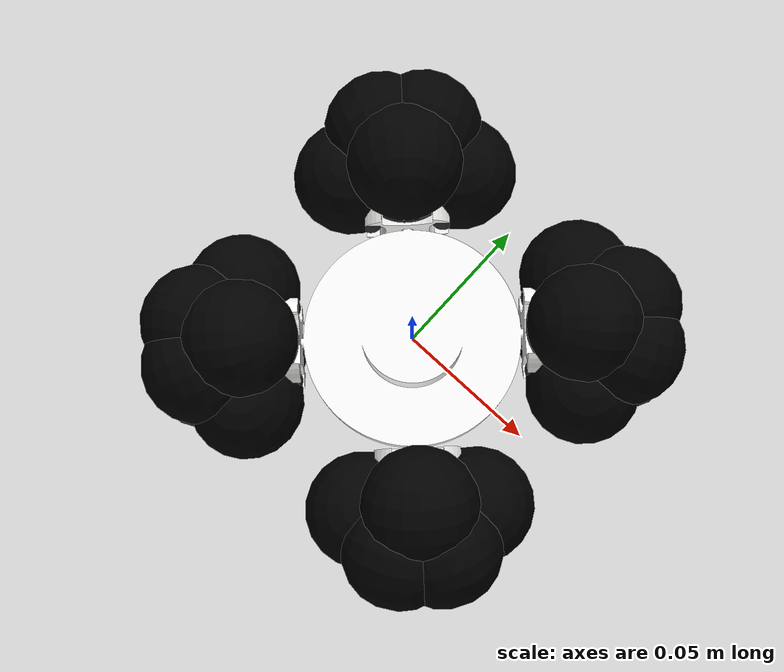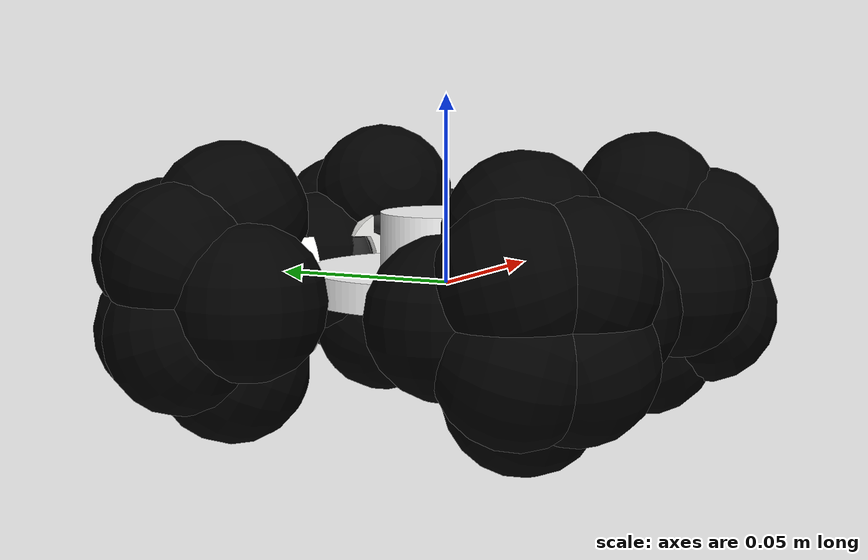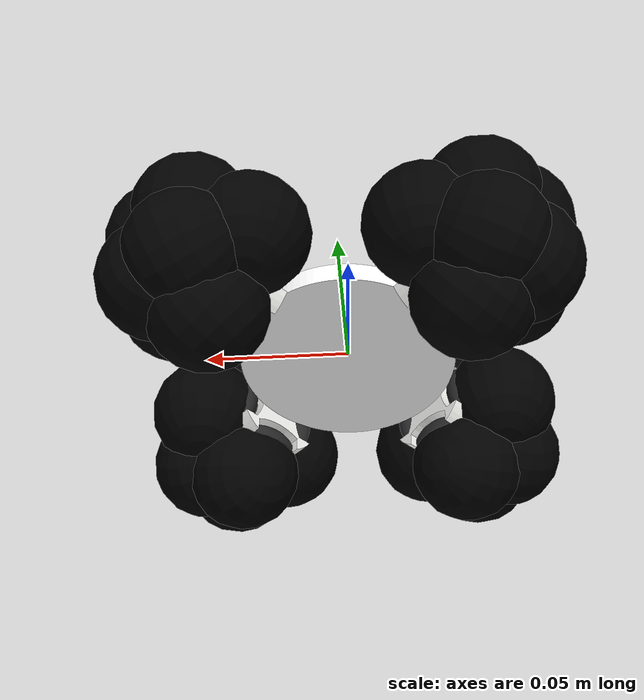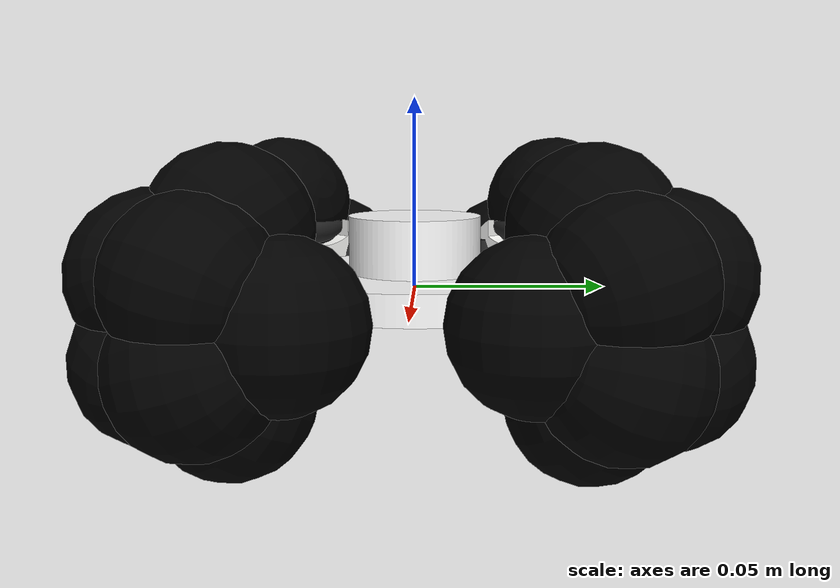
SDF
<sdf version='1.9'>
  <model name='omni_robot'>
    <link name='base_footprint'>
      <inertial>
        <pose>0 0 0 0 0 0</pose>
        <mass>0.050000000000000003</mass>
        <inertia>
          <ixx>2.026666666666666e-05</ixx>
          <ixy>0</ixy>
          <ixz>0</ixz>
          <iyy>2.026666666666666e-05</iyy>
          <iyz>0</iyz>
          <izz>4.0000000000000003e-05</izz>
        </inertia>
      </inertial>
      <collision name='base_footprint_fixed_joint_lump__base_link_collision'>
        <pose>0 0 0 0 0 0.7853981850000001</pose>
        <geometry>
          <mesh>
            <scale>0.001 0.001 0.001</scale>
            <uri>file:///home/armmy2530/Documents/ros2/ros2EIC/install/armmy_omnibot/share/armmy_omnibot/meshes/base_link.stl</uri>
          </mesh>
        </geometry>
        <surface>
          <contact>
            <ode/>
          </contact>
          <friction>
            <ode>
              <mu>0.050000000000000003</mu>
              <mu2>0.050000000000000003</mu2>
            </ode>
          </friction>
        </surface>
      </collision>
      <visual name='base_footprint_fixed_joint_lump__base_link_visual'>
        <pose>0 0 0 0 0 0.7853981850000001</pose>
        <geometry>
          <mesh>
            <scale>0.001 0.001 0.001</scale>
            <uri>file:///home/armmy2530/Documents/ros2/ros2EIC/install/armmy_omnibot/share/armmy_omnibot/meshes/base_link.stl</uri>
          </mesh>
        </geometry>
        <material>
          <diffuse>1 1 1 1</diffuse>
          <ambient>1 1 1 1</ambient>
        </material>
      </visual>
      <self_collide>false</self_collide>
      <sensor name='imu_sensor' type='imu'>
        <always_on>true</always_on>
        <update_rate>40</update_rate>
        <visualize>false</visualize>
        <topic>imu</topic>
        <pose>0 0 0.05 0 -0 0.785398</pose>
      </sensor>
      <sensor name='laser' type='gpu_lidar'>
        <visualize>false</visualize>
        <update_rate>40</update_rate>
        <lidar>
          <scan>
            <horizontal>
              <samples>360</samples>
              <resolution>1</resolution>
              <min_angle>-3.1400000000000001</min_angle>
              <max_angle>3.1400000000000001</max_angle>
            </horizontal>
          </scan>
          <range>
            <min>0.02</min>
            <max>10</max>
            <resolution>0.014999999999999999</resolution>
          </range>
          <noise>
            <type>gaussian</type>
            <mean>0</mean>
            <stddev>0.01</stddev>
          </noise>
        </lidar>
        <topic>scan</topic>
        <pose>0 0 0.05 0 -0 0.785398</pose>
        <gz_frame_id>top_lidar_link</gz_frame_id>
      </sensor>
    </link>
    <joint name='first_wheel_joint' type='revolute'>
      <pose relative_to='base_footprint'>-0.02713522331422381 0.0271352221418437 0 0 0 0.7853981850000001</pose>
      <parent>base_footprint</parent>
      <child>first_wheel_link</child>
      <axis>
        <xyz>0 1 0</xyz>
        <limit>
          <effort>100</effort>
          <velocity>100</velocity>
          <lower>-10000000000000000</lower>
          <upper>10000000000000000</upper>
        </limit>
        <dynamics>
          <spring_reference>0</spring_reference>
          <spring_stiffness>0</spring_stiffness>
        </dynamics>
      </axis>
    </joint>
    <link name='first_wheel_link'>
      <pose relative_to='first_wheel_joint'>0 0 0 0 0 0</pose>
      <inertial>
        <pose>0 0.00925 0 1.570796327 0 0</pose>
        <mass>0.050000000000000003</mass>
        <inertia>
          <ixx>5.254166666666667e-06</ixx>
          <ixy>0</ixy>
          <ixz>0</ixz>
          <iyy>5.254166666666667e-06</iyy>
          <iyz>0</iyz>
          <izz>7.6562500000000014e-06</izz>
        </inertia>
      </inertial>
      <visual name='first_wheel_link_visual'>
        <pose>0 0 0 0 0 0</pose>
        <geometry>
          <mesh>
            <scale>1 1 1</scale>
            <uri>model://armmy_omnibot/meshes/omni_wheel/wheel_assembly.dae</uri>
          </mesh>
        </geometry>
      </visual>
      <self_collide>false</self_collide>
    </link>
    <joint name='roller_first_1_joint' type='revolute'>
      <pose relative_to='first_wheel_link'>0.015 0.0046 0 0 0 1</pose>
      <parent>first_wheel_link</parent>
      <child>roller_first_1_link</child>
      <axis>
        <xyz>0 0 1</xyz>
        <limit>
          <lower>-10000000000000000</lower>
          <upper>10000000000000000</upper>
        </limit>
        <dynamics>
          <spring_reference>0</spring_reference>
          <spring_stiffness>0</spring_stiffness>
        </dynamics>
      </axis>
    </joint>
    <link name='roller_first_1_link'>
      <pose relative_to='roller_first_1_joint'>0 0 0 0 0 0</pose>
      <inertial>
        <pose>0 0.00925 0 1.570796327 0 0</pose>
        <mass>0.001</mass>
        <inertia>
          <ixx>1.6e-07</ixx>
          <ixy>0</ixy>
          <ixz>0</ixz>
          <iyy>1.6e-07</iyy>
          <iyz>0</iyz>
          <izz>1.6e-07</izz>
        </inertia>
      </inertial>
      <collision name='roller_first_1_link_collision'>
        <pose>0.015 0.0046 0 0 0 1</pose>
        <geometry>
          <sphere>
            <radius>0.02</radius>
          </sphere>
        </geometry>
      </collision>
      <visual name='roller_first_1_link_visual'>
        <pose>0.015 0.0046 0 0 0 1</pose>
        <geometry>
          <sphere>
            <radius>0.02</radius>
          </sphere>
        </geometry>
        <material>
          <diffuse>0 0 0 1</diffuse>
          <ambient>0 0 0 1</ambient>
        </material>
      </visual>
    </link>
    <joint name='roller_first_2_joint' type='revolute'>
      <pose relative_to='first_wheel_link'>0 0.0046 0.015 -1 0 0</pose>
      <parent>first_wheel_link</parent>
      <child>roller_first_2_link</child>
      <axis>
        <xyz>-1 0 0</xyz>
        <limit>
          <lower>-10000000000000000</lower>
          <upper>10000000000000000</upper>
        </limit>
        <dynamics>
          <spring_reference>0</spring_reference>
          <spring_stiffness>0</spring_stiffness>
        </dynamics>
      </axis>
    </joint>
    <link name='roller_first_2_link'>
      <pose relative_to='roller_first_2_joint'>0 0 0 0 0 0</pose>
      <inertial>
        <pose>0 0.00925 0 1.570796327 0 0</pose>
        <mass>0.001</mass>
        <inertia>
          <ixx>1.6e-07</ixx>
          <ixy>0</ixy>
          <ixz>0</ixz>
          <iyy>1.6e-07</iyy>
          <iyz>0</iyz>
          <izz>1.6e-07</izz>
        </inertia>
      </inertial>
      <collision name='roller_first_2_link_collision'>
        <pose>0 0.0046 0.015 -1 0 0</pose>
        <geometry>
          <sphere>
            <radius>0.02</radius>
          </sphere>
        </geometry>
      </collision>
      <visual name='roller_first_2_link_visual'>
        <pose>0 0.0046 0.015 -1 0 0</pose>
        <geometry>
          <sphere>
            <radius>0.02</radius>
          </sphere>
        </geometry>
        <material>
          <diffuse>0 0 0 1</diffuse>
          <ambient>0 0 0 1</ambient>
        </material>
      </visual>
    </link>
    <joint name='roller_first_3_joint' type='revolute'>
      <pose relative_to='first_wheel_link'>-0.015 0.0046 0 0 0 -1</pose>
      <parent>first_wheel_link</parent>
      <child>roller_first_3_link</child>
      <axis>
        <xyz>0 0 -1</xyz>
        <limit>
          <lower>-10000000000000000</lower>
          <upper>10000000000000000</upper>
        </limit>
        <dynamics>
          <spring_reference>0</spring_reference>
          <spring_stiffness>0</spring_stiffness>
        </dynamics>
      </axis>
    </joint>
    <link name='roller_first_3_link'>
      <pose relative_to='roller_first_3_joint'>0 0 0 0 0 0</pose>
      <inertial>
        <pose>0 0.00925 0 1.570796327 0 0</pose>
        <mass>0.001</mass>
        <inertia>
          <ixx>1.6e-07</ixx>
          <ixy>0</ixy>
          <ixz>0</ixz>
          <iyy>1.6e-07</iyy>
          <iyz>0</iyz>
          <izz>1.6e-07</izz>
        </inertia>
      </inertial>
      <collision name='roller_first_3_link_collision'>
        <pose>-0.015 0.0046 0 0 0 -1</pose>
        <geometry>
          <sphere>
            <radius>0.02</radius>
          </sphere>
        </geometry>
      </collision>
      <visual name='roller_first_3_link_visual'>
        <pose>-0.015 0.0046 0 0 0 -1</pose>
        <geometry>
          <sphere>
            <radius>0.02</radius>
          </sphere>
        </geometry>
        <material>
          <diffuse>0 0 0 1</diffuse>
          <ambient>0 0 0 1</ambient>
        </material>
      </visual>
    </link>
    <joint name='roller_first_4_joint' type='revolute'>
      <pose relative_to='first_wheel_link'>0 0.0046 -0.015 1 0 0</pose>
      <parent>first_wheel_link</parent>
      <child>roller_first_4_link</child>
      <axis>
        <xyz>1 0 0</xyz>
        <limit>
          <lower>-10000000000000000</lower>
          <upper>10000000000000000</upper>
        </limit>
        <dynamics>
          <spring_reference>0</spring_reference>
          <spring_stiffness>0</spring_stiffness>
        </dynamics>
      </axis>
    </joint>
    <link name='roller_first_4_link'>
      <pose relative_to='roller_first_4_joint'>0 0 0 0 0 0</pose>
      <inertial>
        <pose>0 0.00925 0 1.570796327 0 0</pose>
        <mass>0.001</mass>
        <inertia>
          <ixx>1.6e-07</ixx>
          <ixy>0</ixy>
          <ixz>0</ixz>
          <iyy>1.6e-07</iyy>
          <iyz>0</iyz>
          <izz>1.6e-07</izz>
        </inertia>
      </inertial>
      <collision name='roller_first_4_link_collision'>
        <pose>0 0.0046 -0.015 1 0 0</pose>
        <geometry>
          <sphere>
            <radius>0.02</radius>
          </sphere>
        </geometry>
      </collision>
      <visual name='roller_first_4_link_visual'>
        <pose>0 0.0046 -0.015 1 0 0</pose>
        <geometry>
          <sphere>
            <radius>0.02</radius>
          </sphere>
        </geometry>
        <material>
          <diffuse>0 0 0 1</diffuse>
          <ambient>0 0 0 1</ambient>
        </material>
      </visual>
    </link>
    <joint name='roller_first_5_joint' type='revolute'>
      <pose relative_to='first_wheel_link'>0.0106 0.0139 0.0106 -0.707107 0 0.707107</pose>
      <parent>first_wheel_link</parent>
      <child>roller_first_5_link</child>
      <axis>
        <xyz>-0.707107 0 0.707107</xyz>
        <limit>
          <lower>-10000000000000000</lower>
          <upper>10000000000000000</upper>
        </limit>
        <dynamics>
          <spring_reference>0</spring_reference>
          <spring_stiffness>0</spring_stiffness>
        </dynamics>
      </axis>
    </joint>
    <link name='roller_first_5_link'>
      <pose relative_to='roller_first_5_joint'>0 0 0 0 0 0</pose>
      <inertial>
        <pose>0 0.00925 0 1.570796327 0 0</pose>
        <mass>0.001</mass>
        <inertia>
          <ixx>1.6e-07</ixx>
          <ixy>0</ixy>
          <ixz>0</ixz>
          <iyy>1.6e-07</iyy>
          <iyz>0</iyz>
          <izz>1.6e-07</izz>
        </inertia>
      </inertial>
      <collision name='roller_first_5_link_collision'>
        <pose>0.0106 0.0139 0.0106 -0.707107 0 0.707107</pose>
        <geometry>
          <sphere>
            <radius>0.02</radius>
          </sphere>
        </geometry>
      </collision>
      <visual name='roller_first_5_link_visual'>
        <pose>0.0106 0.0139 0.0106 -0.707107 0 0.707107</pose>
        <geometry>
          <sphere>
            <radius>0.02</radius>
          </sphere>
        </geometry>
        <material>
          <diffuse>0 0 0 1</diffuse>
          <ambient>0 0 0 1</ambient>
        </material>
      </visual>
    </link>
    <joint name='roller_first_6_joint' type='revolute'>
      <pose relative_to='first_wheel_link'>-0.0106 0.0139 0.0106 -0.707107 0 -0.707107</pose>
      <parent>first_wheel_link</parent>
      <child>roller_first_6_link</child>
      <axis>
        <xyz>-0.707107 0 -0.707107</xyz>
        <limit>
          <lower>-10000000000000000</lower>
          <upper>10000000000000000</upper>
        </limit>
        <dynamics>
          <spring_reference>0</spring_reference>
          <spring_stiffness>0</spring_stiffness>
        </dynamics>
      </axis>
    </joint>
    <link name='roller_first_6_link'>
      <pose relative_to='roller_first_6_joint'>0 0 0 0 0 0</pose>
      <inertial>
        <pose>0 0.00925 0 1.570796327 0 0</pose>
        <mass>0.001</mass>
        <inertia>
          <ixx>1.6e-07</ixx>
          <ixy>0</ixy>
          <ixz>0</ixz>
          <iyy>1.6e-07</iyy>
          <iyz>0</iyz>
          <izz>1.6e-07</izz>
        </inertia>
      </inertial>
      <collision name='roller_first_6_link_collision'>
        <pose>-0.0106 0.0139 0.0106 -0.707107 0 -0.707107</pose>
        <geometry>
          <sphere>
            <radius>0.02</radius>
          </sphere>
        </geometry>
      </collision>
      <visual name='roller_first_6_link_visual'>
        <pose>-0.0106 0.0139 0.0106 -0.707107 0 -0.707107</pose>
        <geometry>
          <sphere>
            <radius>0.02</radius>
          </sphere>
        </geometry>
        <material>
          <diffuse>0 0 0 1</diffuse>
          <ambient>0 0 0 1</ambient>
        </material>
      </visual>
    </link>
    <joint name='roller_first_7_joint' type='revolute'>
      <pose relative_to='first_wheel_link'>-0.0106 0.0139 -0.0106 0.707107 0 -0.707107</pose>
      <parent>first_wheel_link</parent>
      <child>roller_first_7_link</child>
      <axis>
        <xyz>0.707107 0 -0.707107</xyz>
        <limit>
          <lower>-10000000000000000</lower>
          <upper>10000000000000000</upper>
        </limit>
        <dynamics>
          <spring_reference>0</spring_reference>
          <spring_stiffness>0</spring_stiffness>
        </dynamics>
      </axis>
    </joint>
    <link name='roller_first_7_link'>
      <pose relative_to='roller_first_7_joint'>0 0 0 0 0 0</pose>
      <inertial>
        <pose>0 0.00925 0 1.570796327 0 0</pose>
        <mass>0.001</mass>
        <inertia>
          <ixx>1.6e-07</ixx>
          <ixy>0</ixy>
          <ixz>0</ixz>
          <iyy>1.6e-07</iyy>
          <iyz>0</iyz>
          <izz>1.6e-07</izz>
        </inertia>
      </inertial>
      <collision name='roller_first_7_link_collision'>
        <pose>-0.0106 0.0139 -0.0106 0.707107 0 -0.707107</pose>
        <geometry>
          <sphere>
            <radius>0.02</radius>
          </sphere>
        </geometry>
      </collision>
      <visual name='roller_first_7_link_visual'>
        <pose>-0.0106 0.0139 -0.0106 0.707107 0 -0.707107</pose>
        <geometry>
          <sphere>
            <radius>0.02</radius>
          </sphere>
        </geometry>
        <material>
          <diffuse>0 0 0 1</diffuse>
          <ambient>0 0 0 1</ambient>
        </material>
      </visual>
    </link>
    <joint name='roller_first_8_joint' type='revolute'>
      <pose relative_to='first_wheel_link'>0.0106 0.0139 -0.0106 0.707107 0 0.707107</pose>
      <parent>first_wheel_link</parent>
      <child>roller_first_8_link</child>
      <axis>
        <xyz>0.707107 0 0.707107</xyz>
        <limit>
          <lower>-10000000000000000</lower>
          <upper>10000000000000000</upper>
        </limit>
        <dynamics>
          <spring_reference>0</spring_reference>
          <spring_stiffness>0</spring_stiffness>
        </dynamics>
      </axis>
    </joint>
    <link name='roller_first_8_link'>
      <pose relative_to='roller_first_8_joint'>0 0 0 0 0 0</pose>
      <inertial>
        <pose>0 0.00925 0 1.570796327 0 0</pose>
        <mass>0.001</mass>
        <inertia>
          <ixx>1.6e-07</ixx>
          <ixy>0</ixy>
          <ixz>0</ixz>
          <iyy>1.6e-07</iyy>
          <iyz>0</iyz>
          <izz>1.6e-07</izz>
        </inertia>
      </inertial>
      <collision name='roller_first_8_link_collision'>
        <pose>0.0106 0.0139 -0.0106 0.707107 0 0.707107</pose>
        <geometry>
          <sphere>
            <radius>0.02</radius>
          </sphere>
        </geometry>
      </collision>
      <visual name='roller_first_8_link_visual'>
        <pose>0.0106 0.0139 -0.0106 0.707107 0 0.707107</pose>
        <geometry>
          <sphere>
            <radius>0.02</radius>
          </sphere>
        </geometry>
        <material>
          <diffuse>0 0 0 1</diffuse>
          <ambient>0 0 0 1</ambient>
        </material>
      </visual>
    </link>
    <joint name='fourth_wheel_joint' type='revolute'>
      <pose relative_to='base_footprint'>0.0271352221418437 0.02713522331422381 0 0 0 -0.7853980121795862</pose>
      <parent>base_footprint</parent>
      <child>fourth_wheel_link</child>
      <axis>
        <xyz>0 1 0</xyz>
        <limit>
          <effort>100</effort>
          <velocity>100</velocity>
          <lower>-10000000000000000</lower>
          <upper>10000000000000000</upper>
        </limit>
        <dynamics>
          <spring_reference>0</spring_reference>
          <spring_stiffness>0</spring_stiffness>
        </dynamics>
      </axis>
    </joint>
    <link name='fourth_wheel_link'>
      <pose relative_to='fourth_wheel_joint'>0 0 0 0 0 0</pose>
      <inertial>
        <pose>0 0.00925 0 1.570796327 0 0</pose>
        <mass>0.050000000000000003</mass>
        <inertia>
          <ixx>5.254166666666667e-06</ixx>
          <ixy>0</ixy>
          <ixz>0</ixz>
          <iyy>5.254166666666667e-06</iyy>
          <iyz>0</iyz>
          <izz>7.6562500000000014e-06</izz>
        </inertia>
      </inertial>
      <visual name='fourth_wheel_link_visual'>
        <pose>0 0 0 0 0 0</pose>
        <geometry>
          <mesh>
            <scale>1 1 1</scale>
            <uri>model://armmy_omnibot/meshes/omni_wheel/wheel_assembly.dae</uri>
          </mesh>
        </geometry>
      </visual>
      <self_collide>false</self_collide>
    </link>
    <joint name='roller_fourth_1_joint' type='revolute'>
      <pose relative_to='fourth_wheel_link'>0.015 0.0046 0 0 0 1</pose>
      <parent>fourth_wheel_link</parent>
      <child>roller_fourth_1_link</child>
      <axis>
        <xyz>0 0 1</xyz>
        <limit>
          <lower>-10000000000000000</lower>
          <upper>10000000000000000</upper>
        </limit>
        <dynamics>
          <spring_reference>0</spring_reference>
          <spring_stiffness>0</spring_stiffness>
        </dynamics>
      </axis>
    </joint>
    <link name='roller_fourth_1_link'>
      <pose relative_to='roller_fourth_1_joint'>0 0 0 0 0 0</pose>
      <inertial>
        <pose>0 0.00925 0 1.570796327 0 0</pose>
        <mass>0.001</mass>
        <inertia>
          <ixx>1.6e-07</ixx>
          <ixy>0</ixy>
          <ixz>0</ixz>
          <iyy>1.6e-07</iyy>
          <iyz>0</iyz>
          <izz>1.6e-07</izz>
        </inertia>
      </inertial>
      <collision name='roller_fourth_1_link_collision'>
        <pose>0.015 0.0046 0 0 0 1</pose>
        <geometry>
          <sphere>
            <radius>0.02</radius>
          </sphere>
        </geometry>
      </collision>
      <visual name='roller_fourth_1_link_visual'>
        <pose>0.015 0.0046 0 0 0 1</pose>
        <geometry>
          <sphere>
            <radius>0.02</radius>
          </sphere>
        </geometry>
        <material>
          <diffuse>0 0 0 1</diffuse>
          <ambient>0 0 0 1</ambient>
        </material>
      </visual>
    </link>
    <joint name='roller_fourth_2_joint' type='revolute'>
      <pose relative_to='fourth_wheel_link'>0 0.0046 0.015 -1 0 0</pose>
      <parent>fourth_wheel_link</parent>
      <child>roller_fourth_2_link</child>
      <axis>
        <xyz>-1 0 0</xyz>
        <limit>
          <lower>-10000000000000000</lower>
          <upper>10000000000000000</upper>
        </limit>
        <dynamics>
          <spring_reference>0</spring_reference>
          <spring_stiffness>0</spring_stiffness>
        </dynamics>
      </axis>
    </joint>
    <link name='roller_fourth_2_link'>
      <pose relative_to='roller_fourth_2_joint'>0 0 0 0 0 0</pose>
      <inertial>
        <pose>0 0.00925 0 1.570796327 0 0</pose>
        <mass>0.001</mass>
        <inertia>
          <ixx>1.6e-07</ixx>
          <ixy>0</ixy>
          <ixz>0</ixz>
          <iyy>1.6e-07</iyy>
          <iyz>0</iyz>
          <izz>1.6e-07</izz>
        </inertia>
      </inertial>
      <collision name='roller_fourth_2_link_collision'>
        <pose>0 0.0046 0.015 -1 0 0</pose>
        <geometry>
          <sphere>
            <radius>0.02</radius>
          </sphere>
        </geometry>
      </collision>
      <visual name='roller_fourth_2_link_visual'>
        <pose>0 0.0046 0.015 -1 0 0</pose>
        <geometry>
          <sphere>
            <radius>0.02</radius>
          </sphere>
        </geometry>
        <material>
          <diffuse>0 0 0 1</diffuse>
          <ambient>0 0 0 1</ambient>
        </material>
      </visual>
    </link>
    <joint name='roller_fourth_3_joint' type='revolute'>
      <pose relative_to='fourth_wheel_link'>-0.015 0.0046 0 0 0 -1</pose>
      <parent>fourth_wheel_link</parent>
      <child>roller_fourth_3_link</child>
      <axis>
        <xyz>0 0 -1</xyz>
        <limit>
          <lower>-10000000000000000</lower>
          <upper>10000000000000000</upper>
        </limit>
        <dynamics>
          <spring_reference>0</spring_reference>
          <spring_stiffness>0</spring_stiffness>
        </dynamics>
      </axis>
    </joint>
    <link name='roller_fourth_3_link'>
      <pose relative_to='roller_fourth_3_joint'>0 0 0 0 0 0</pose>
      <inertial>
        <pose>0 0.00925 0 1.570796327 0 0</pose>
        <mass>0.001</mass>
        <inertia>
          <ixx>1.6e-07</ixx>
          <ixy>0</ixy>
          <ixz>0</ixz>
          <iyy>1.6e-07</iyy>
          <iyz>0</iyz>
          <izz>1.6e-07</izz>
        </inertia>
      </inertial>
      <collision name='roller_fourth_3_link_collision'>
        <pose>-0.015 0.0046 0 0 0 -1</pose>
        <geometry>
          <sphere>
            <radius>0.02</radius>
          </sphere>
        </geometry>
      </collision>
      <visual name='roller_fourth_3_link_visual'>
        <pose>-0.015 0.0046 0 0 0 -1</pose>
        <geometry>
          <sphere>
            <radius>0.02</radius>
          </sphere>
        </geometry>
        <material>
          <diffuse>0 0 0 1</diffuse>
          <ambient>0 0 0 1</ambient>
        </material>
      </visual>
    </link>
    <joint name='roller_fourth_4_joint' type='revolute'>
      <pose relative_to='fourth_wheel_link'>0 0.0046 -0.015 1 0 0</pose>
      <parent>fourth_wheel_link</parent>
      <child>roller_fourth_4_link</child>
      <axis>
        <xyz>1 0 0</xyz>
        <limit>
          <lower>-10000000000000000</lower>
          <upper>10000000000000000</upper>
        </limit>
        <dynamics>
          <spring_reference>0</spring_reference>
          <spring_stiffness>0</spring_stiffness>
        </dynamics>
      </axis>
    </joint>
    <link name='roller_fourth_4_link'>
      <pose relative_to='roller_fourth_4_joint'>0 0 0 0 0 0</pose>
      <inertial>
        <pose>0 0.00925 0 1.570796327 0 0</pose>
        <mass>0.001</mass>
        <inertia>
          <ixx>1.6e-07</ixx>
          <ixy>0</ixy>
          <ixz>0</ixz>
          <iyy>1.6e-07</iyy>
          <iyz>0</iyz>
          <izz>1.6e-07</izz>
        </inertia>
      </inertial>
      <collision name='roller_fourth_4_link_collision'>
        <pose>0 0.0046 -0.015 1 0 0</pose>
        <geometry>
          <sphere>
            <radius>0.02</radius>
          </sphere>
        </geometry>
      </collision>
      <visual name='roller_fourth_4_link_visual'>
        <pose>0 0.0046 -0.015 1 0 0</pose>
        <geometry>
          <sphere>
            <radius>0.02</radius>
          </sphere>
        </geometry>
        <material>
          <diffuse>0 0 0 1</diffuse>
          <ambient>0 0 0 1</ambient>
        </material>
      </visual>
    </link>
    <joint name='roller_fourth_5_joint' type='revolute'>
      <pose relative_to='fourth_wheel_link'>0.0106 0.0139 0.0106 -0.707107 0 0.707107</pose>
      <parent>fourth_wheel_link</parent>
      <child>roller_fourth_5_link</child>
      <axis>
        <xyz>-0.707107 0 0.707107</xyz>
        <limit>
          <lower>-10000000000000000</lower>
          <upper>10000000000000000</upper>
        </limit>
        <dynamics>
          <spring_reference>0</spring_reference>
          <spring_stiffness>0</spring_stiffness>
        </dynamics>
      </axis>
    </joint>
    <link name='roller_fourth_5_link'>
      <pose relative_to='roller_fourth_5_joint'>0 0 0 0 0 0</pose>
      <inertial>
        <pose>0 0.00925 0 1.570796327 0 0</pose>
        <mass>0.001</mass>
        <inertia>
          <ixx>1.6e-07</ixx>
          <ixy>0</ixy>
          <ixz>0</ixz>
          <iyy>1.6e-07</iyy>
          <iyz>0</iyz>
          <izz>1.6e-07</izz>
        </inertia>
      </inertial>
      <collision name='roller_fourth_5_link_collision'>
        <pose>0.0106 0.0139 0.0106 -0.707107 0 0.707107</pose>
        <geometry>
          <sphere>
            <radius>0.02</radius>
          </sphere>
        </geometry>
      </collision>
      <visual name='roller_fourth_5_link_visual'>
        <pose>0.0106 0.0139 0.0106 -0.707107 0 0.707107</pose>
        <geometry>
          <sphere>
            <radius>0.02</radius>
          </sphere>
        </geometry>
        <material>
          <diffuse>0 0 0 1</diffuse>
          <ambient>0 0 0 1</ambient>
        </material>
      </visual>
    </link>
    <joint name='roller_fourth_6_joint' type='revolute'>
      <pose relative_to='fourth_wheel_link'>-0.0106 0.0139 0.0106 -0.707107 0 -0.707107</pose>
      <parent>fourth_wheel_link</parent>
      <child>roller_fourth_6_link</child>
      <axis>
        <xyz>-0.707107 0 -0.707107</xyz>
        <limit>
          <lower>-10000000000000000</lower>
          <upper>10000000000000000</upper>
        </limit>
        <dynamics>
          <spring_reference>0</spring_reference>
          <spring_stiffness>0</spring_stiffness>
        </dynamics>
      </axis>
    </joint>
    <link name='roller_fourth_6_link'>
      <pose relative_to='roller_fourth_6_joint'>0 0 0 0 0 0</pose>
      <inertial>
        <pose>0 0.00925 0 1.570796327 0 0</pose>
        <mass>0.001</mass>
        <inertia>
          <ixx>1.6e-07</ixx>
          <ixy>0</ixy>
          <ixz>0</ixz>
          <iyy>1.6e-07</iyy>
          <iyz>0</iyz>
          <izz>1.6e-07</izz>
        </inertia>
      </inertial>
      <collision name='roller_fourth_6_link_collision'>
        <pose>-0.0106 0.0139 0.0106 -0.707107 0 -0.707107</pose>
        <geometry>
          <sphere>
            <radius>0.02</radius>
          </sphere>
        </geometry>
      </collision>
      <visual name='roller_fourth_6_link_visual'>
        <pose>-0.0106 0.0139 0.0106 -0.707107 0 -0.707107</pose>
        <geometry>
          <sphere>
            <radius>0.02</radius>
          </sphere>
        </geometry>
        <material>
          <diffuse>0 0 0 1</diffuse>
          <ambient>0 0 0 1</ambient>
        </material>
      </visual>
    </link>
    <joint name='roller_fourth_7_joint' type='revolute'>
      <pose relative_to='fourth_wheel_link'>-0.0106 0.0139 -0.0106 0.707107 0 -0.707107</pose>
      <parent>fourth_wheel_link</parent>
      <child>roller_fourth_7_link</child>
      <axis>
        <xyz>0.707107 0 -0.707107</xyz>
        <limit>
          <lower>-10000000000000000</lower>
          <upper>10000000000000000</upper>
        </limit>
        <dynamics>
          <spring_reference>0</spring_reference>
          <spring_stiffness>0</spring_stiffness>
        </dynamics>
      </axis>
    </joint>
    <link name='roller_fourth_7_link'>
      <pose relative_to='roller_fourth_7_joint'>0 0 0 0 0 0</pose>
      <inertial>
        <pose>0 0.00925 0 1.570796327 0 0</pose>
        <mass>0.001</mass>
        <inertia>
          <ixx>1.6e-07</ixx>
          <ixy>0</ixy>
          <ixz>0</ixz>
          <iyy>1.6e-07</iyy>
          <iyz>0</iyz>
          <izz>1.6e-07</izz>
        </inertia>
      </inertial>
      <collision name='roller_fourth_7_link_collision'>
        <pose>-0.0106 0.0139 -0.0106 0.707107 0 -0.707107</pose>
        <geometry>
          <sphere>
            <radius>0.02</radius>
          </sphere>
        </geometry>
      </collision>
      <visual name='roller_fourth_7_link_visual'>
        <pose>-0.0106 0.0139 -0.0106 0.707107 0 -0.707107</pose>
        <geometry>
          <sphere>
            <radius>0.02</radius>
          </sphere>
        </geometry>
        <material>
          <diffuse>0 0 0 1</diffuse>
          <ambient>0 0 0 1</ambient>
        </material>
      </visual>
    </link>
    <joint name='roller_fourth_8_joint' type='revolute'>
      <pose relative_to='fourth_wheel_link'>0.0106 0.0139 -0.0106 0.707107 0 0.707107</pose>
      <parent>fourth_wheel_link</parent>
      <child>roller_fourth_8_link</child>
      <axis>
        <xyz>0.707107 0 0.707107</xyz>
        <limit>
          <lower>-10000000000000000</lower>
          <upper>10000000000000000</upper>
        </limit>
        <dynamics>
          <spring_reference>0</spring_reference>
          <spring_stiffness>0</spring_stiffness>
        </dynamics>
      </axis>
    </joint>
    <link name='roller_fourth_8_link'>
      <pose relative_to='roller_fourth_8_joint'>0 0 0 0 0 0</pose>
      <inertial>
        <pose>0 0.00925 0 1.570796327 0 0</pose>
        <mass>0.001</mass>
        <inertia>
          <ixx>1.6e-07</ixx>
          <ixy>0</ixy>
          <ixz>0</ixz>
          <iyy>1.6e-07</iyy>
          <iyz>0</iyz>
          <izz>1.6e-07</izz>
        </inertia>
      </inertial>
      <collision name='roller_fourth_8_link_collision'>
        <pose>0.0106 0.0139 -0.0106 0.707107 0 0.707107</pose>
        <geometry>
          <sphere>
            <radius>0.02</radius>
          </sphere>
        </geometry>
      </collision>
      <visual name='roller_fourth_8_link_visual'>
        <pose>0.0106 0.0139 -0.0106 0.707107 0 0.707107</pose>
        <geometry>
          <sphere>
            <radius>0.02</radius>
          </sphere>
        </geometry>
        <material>
          <diffuse>0 0 0 1</diffuse>
          <ambient>0 0 0 1</ambient>
        </material>
      </visual>
    </link>
    <joint name='second_wheel_joint' type='revolute'>
      <pose relative_to='base_footprint'>-0.0271352221418437 -0.02713522331422381 0 0 0 2.356194555</pose>
      <parent>base_footprint</parent>
      <child>second_wheel_link</child>
      <axis>
        <xyz>0 1 0</xyz>
        <limit>
          <effort>100</effort>
          <velocity>100</velocity>
          <lower>-10000000000000000</lower>
          <upper>10000000000000000</upper>
        </limit>
        <dynamics>
          <spring_reference>0</spring_reference>
          <spring_stiffness>0</spring_stiffness>
        </dynamics>
      </axis>
    </joint>
    <link name='second_wheel_link'>
      <pose relative_to='second_wheel_joint'>0 0 0 0 0 0</pose>
      <inertial>
        <pose>0 0.00925 0 1.570796327 0 0</pose>
        <mass>0.050000000000000003</mass>
        <inertia>
          <ixx>5.254166666666667e-06</ixx>
          <ixy>0</ixy>
          <ixz>0</ixz>
          <iyy>5.254166666666667e-06</iyy>
          <iyz>0</iyz>
          <izz>7.6562500000000014e-06</izz>
        </inertia>
      </inertial>
      <visual name='second_wheel_link_visual'>
        <pose>0 0 0 0 0 0</pose>
        <geometry>
          <mesh>
            <scale>1 1 1</scale>
            <uri>model://armmy_omnibot/meshes/omni_wheel/wheel_assembly.dae</uri>
          </mesh>
        </geometry>
      </visual>
      <self_collide>false</self_collide>
    </link>
    <joint name='roller_second_1_joint' type='revolute'>
      <pose relative_to='second_wheel_link'>0.015 0.0046 0 0 0 1</pose>
      <parent>second_wheel_link</parent>
      <child>roller_second_1_link</child>
      <axis>
        <xyz>0 0 1</xyz>
        <limit>
          <lower>-10000000000000000</lower>
          <upper>10000000000000000</upper>
        </limit>
        <dynamics>
          <spring_reference>0</spring_reference>
          <spring_stiffness>0</spring_stiffness>
        </dynamics>
      </axis>
    </joint>
    <link name='roller_second_1_link'>
      <pose relative_to='roller_second_1_joint'>0 0 0 0 0 0</pose>
      <inertial>
        <pose>0 0.00925 0 1.570796327 0 0</pose>
        <mass>0.001</mass>
        <inertia>
          <ixx>1.6e-07</ixx>
          <ixy>0</ixy>
          <ixz>0</ixz>
          <iyy>1.6e-07</iyy>
          <iyz>0</iyz>
          <izz>1.6e-07</izz>
        </inertia>
      </inertial>
      <collision name='roller_second_1_link_collision'>
        <pose>0.015 0.0046 0 0 0 1</pose>
        <geometry>
          <sphere>
            <radius>0.02</radius>
          </sphere>
        </geometry>
      </collision>
      <visual name='roller_second_1_link_visual'>
        <pose>0.015 0.0046 0 0 0 1</pose>
        <geometry>
          <sphere>
            <radius>0.02</radius>
          </sphere>
        </geometry>
        <material>
          <diffuse>0 0 0 1</diffuse>
          <ambient>0 0 0 1</ambient>
        </material>
      </visual>
    </link>
    <joint name='roller_second_2_joint' type='revolute'>
      <pose relative_to='second_wheel_link'>0 0.0046 0.015 -1 0 0</pose>
      <parent>second_wheel_link</parent>
      <child>roller_second_2_link</child>
      <axis>
        <xyz>-1 0 0</xyz>
        <limit>
          <lower>-10000000000000000</lower>
          <upper>10000000000000000</upper>
        </limit>
        <dynamics>
          <spring_reference>0</spring_reference>
          <spring_stiffness>0</spring_stiffness>
        </dynamics>
      </axis>
    </joint>
    <link name='roller_second_2_link'>
      <pose relative_to='roller_second_2_joint'>0 0 0 0 0 0</pose>
      <inertial>
        <pose>0 0.00925 0 1.570796327 0 0</pose>
        <mass>0.001</mass>
        <inertia>
          <ixx>1.6e-07</ixx>
          <ixy>0</ixy>
          <ixz>0</ixz>
          <iyy>1.6e-07</iyy>
          <iyz>0</iyz>
          <izz>1.6e-07</izz>
        </inertia>
      </inertial>
      <collision name='roller_second_2_link_collision'>
        <pose>0 0.0046 0.015 -1 0 0</pose>
        <geometry>
          <sphere>
            <radius>0.02</radius>
          </sphere>
        </geometry>
      </collision>
      <visual name='roller_second_2_link_visual'>
        <pose>0 0.0046 0.015 -1 0 0</pose>
        <geometry>
          <sphere>
            <radius>0.02</radius>
          </sphere>
        </geometry>
        <material>
          <diffuse>0 0 0 1</diffuse>
          <ambient>0 0 0 1</ambient>
        </material>
      </visual>
    </link>
    <joint name='roller_second_3_joint' type='revolute'>
      <pose relative_to='second_wheel_link'>-0.015 0.0046 0 0 0 -1</pose>
      <parent>second_wheel_link</parent>
      <child>roller_second_3_link</child>
      <axis>
        <xyz>0 0 -1</xyz>
        <limit>
          <lower>-10000000000000000</lower>
          <upper>10000000000000000</upper>
        </limit>
        <dynamics>
          <spring_reference>0</spring_reference>
          <spring_stiffness>0</spring_stiffness>
        </dynamics>
      </axis>
    </joint>
    <link name='roller_second_3_link'>
      <pose relative_to='roller_second_3_joint'>0 0 0 0 0 0</pose>
      <inertial>
        <pose>0 0.00925 0 1.570796327 0 0</pose>
        <mass>0.001</mass>
        <inertia>
          <ixx>1.6e-07</ixx>
          <ixy>0</ixy>
          <ixz>0</ixz>
          <iyy>1.6e-07</iyy>
          <iyz>0</iyz>
          <izz>1.6e-07</izz>
        </inertia>
      </inertial>
      <collision name='roller_second_3_link_collision'>
        <pose>-0.015 0.0046 0 0 0 -1</pose>
        <geometry>
          <sphere>
            <radius>0.02</radius>
          </sphere>
        </geometry>
      </collision>
      <visual name='roller_second_3_link_visual'>
        <pose>-0.015 0.0046 0 0 0 -1</pose>
        <geometry>
          <sphere>
            <radius>0.02</radius>
          </sphere>
        </geometry>
        <material>
          <diffuse>0 0 0 1</diffuse>
          <ambient>0 0 0 1</ambient>
        </material>
      </visual>
    </link>
    <joint name='roller_second_4_joint' type='revolute'>
      <pose relative_to='second_wheel_link'>0 0.0046 -0.015 1 0 0</pose>
      <parent>second_wheel_link</parent>
      <child>roller_second_4_link</child>
      <axis>
        <xyz>1 0 0</xyz>
        <limit>
          <lower>-10000000000000000</lower>
          <upper>10000000000000000</upper>
        </limit>
        <dynamics>
          <spring_reference>0</spring_reference>
          <spring_stiffness>0</spring_stiffness>
        </dynamics>
      </axis>
    </joint>
    <link name='roller_second_4_link'>
      <pose relative_to='roller_second_4_joint'>0 0 0 0 0 0</pose>
      <inertial>
        <pose>0 0.00925 0 1.570796327 0 0</pose>
        <mass>0.001</mass>
        <inertia>
          <ixx>1.6e-07</ixx>
          <ixy>0</ixy>
          <ixz>0</ixz>
          <iyy>1.6e-07</iyy>
          <iyz>0</iyz>
          <izz>1.6e-07</izz>
        </inertia>
      </inertial>
      <collision name='roller_second_4_link_collision'>
        <pose>0 0.0046 -0.015 1 0 0</pose>
        <geometry>
          <sphere>
            <radius>0.02</radius>
          </sphere>
        </geometry>
      </collision>
      <visual name='roller_second_4_link_visual'>
        <pose>0 0.0046 -0.015 1 0 0</pose>
        <geometry>
          <sphere>
            <radius>0.02</radius>
          </sphere>
        </geometry>
        <material>
          <diffuse>0 0 0 1</diffuse>
          <ambient>0 0 0 1</ambient>
        </material>
      </visual>
    </link>
    <joint name='roller_second_5_joint' type='revolute'>
      <pose relative_to='second_wheel_link'>0.0106 0.0139 0.0106 -0.707107 0 0.707107</pose>
      <parent>second_wheel_link</parent>
      <child>roller_second_5_link</child>
      <axis>
        <xyz>-0.707107 0 0.707107</xyz>
        <limit>
          <lower>-10000000000000000</lower>
          <upper>10000000000000000</upper>
        </limit>
        <dynamics>
          <spring_reference>0</spring_reference>
          <spring_stiffness>0</spring_stiffness>
        </dynamics>
      </axis>
    </joint>
    <link name='roller_second_5_link'>
      <pose relative_to='roller_second_5_joint'>0 0 0 0 0 0</pose>
      <inertial>
        <pose>0 0.00925 0 1.570796327 0 0</pose>
        <mass>0.001</mass>
        <inertia>
          <ixx>1.6e-07</ixx>
          <ixy>0</ixy>
          <ixz>0</ixz>
          <iyy>1.6e-07</iyy>
          <iyz>0</iyz>
          <izz>1.6e-07</izz>
        </inertia>
      </inertial>
      <collision name='roller_second_5_link_collision'>
        <pose>0.0106 0.0139 0.0106 -0.707107 0 0.707107</pose>
        <geometry>
          <sphere>
            <radius>0.02</radius>
          </sphere>
        </geometry>
      </collision>
      <visual name='roller_second_5_link_visual'>
        <pose>0.0106 0.0139 0.0106 -0.707107 0 0.707107</pose>
        <geometry>
          <sphere>
            <radius>0.02</radius>
          </sphere>
        </geometry>
        <material>
          <diffuse>0 0 0 1</diffuse>
          <ambient>0 0 0 1</ambient>
        </material>
      </visual>
    </link>
    <joint name='roller_second_6_joint' type='revolute'>
      <pose relative_to='second_wheel_link'>-0.0106 0.0139 0.0106 -0.707107 0 -0.707107</pose>
      <parent>second_wheel_link</parent>
      <child>roller_second_6_link</child>
      <axis>
        <xyz>-0.707107 0 -0.707107</xyz>
        <limit>
          <lower>-10000000000000000</lower>
          <upper>10000000000000000</upper>
        </limit>
        <dynamics>
          <spring_reference>0</spring_reference>
          <spring_stiffness>0</spring_stiffness>
        </dynamics>
      </axis>
    </joint>
    <link name='roller_second_6_link'>
      <pose relative_to='roller_second_6_joint'>0 0 0 0 0 0</pose>
      <inertial>
        <pose>0 0.00925 0 1.570796327 0 0</pose>
        <mass>0.001</mass>
        <inertia>
          <ixx>1.6e-07</ixx>
          <ixy>0</ixy>
          <ixz>0</ixz>
          <iyy>1.6e-07</iyy>
          <iyz>0</iyz>
          <izz>1.6e-07</izz>
        </inertia>
      </inertial>
      <collision name='roller_second_6_link_collision'>
        <pose>-0.0106 0.0139 0.0106 -0.707107 0 -0.707107</pose>
        <geometry>
          <sphere>
            <radius>0.02</radius>
          </sphere>
        </geometry>
      </collision>
      <visual name='roller_second_6_link_visual'>
        <pose>-0.0106 0.0139 0.0106 -0.707107 0 -0.707107</pose>
        <geometry>
          <sphere>
            <radius>0.02</radius>
          </sphere>
        </geometry>
        <material>
          <diffuse>0 0 0 1</diffuse>
          <ambient>0 0 0 1</ambient>
        </material>
      </visual>
    </link>
    <joint name='roller_second_7_joint' type='revolute'>
      <pose relative_to='second_wheel_link'>-0.0106 0.0139 -0.0106 0.707107 0 -0.707107</pose>
      <parent>second_wheel_link</parent>
      <child>roller_second_7_link</child>
      <axis>
        <xyz>0.707107 0 -0.707107</xyz>
        <limit>
          <lower>-10000000000000000</lower>
          <upper>10000000000000000</upper>
        </limit>
        <dynamics>
          <spring_reference>0</spring_reference>
          <spring_stiffness>0</spring_stiffness>
        </dynamics>
      </axis>
    </joint>
    <link name='roller_second_7_link'>
      <pose relative_to='roller_second_7_joint'>0 0 0 0 0 0</pose>
      <inertial>
        <pose>0 0.00925 0 1.570796327 0 0</pose>
        <mass>0.001</mass>
        <inertia>
          <ixx>1.6e-07</ixx>
          <ixy>0</ixy>
          <ixz>0</ixz>
          <iyy>1.6e-07</iyy>
          <iyz>0</iyz>
          <izz>1.6e-07</izz>
        </inertia>
      </inertial>
      <collision name='roller_second_7_link_collision'>
        <pose>-0.0106 0.0139 -0.0106 0.707107 0 -0.707107</pose>
        <geometry>
          <sphere>
            <radius>0.02</radius>
          </sphere>
        </geometry>
      </collision>
      <visual name='roller_second_7_link_visual'>
        <pose>-0.0106 0.0139 -0.0106 0.707107 0 -0.707107</pose>
        <geometry>
          <sphere>
            <radius>0.02</radius>
          </sphere>
        </geometry>
        <material>
          <diffuse>0 0 0 1</diffuse>
          <ambient>0 0 0 1</ambient>
        </material>
      </visual>
    </link>
    <joint name='roller_second_8_joint' type='revolute'>
      <pose relative_to='second_wheel_link'>0.0106 0.0139 -0.0106 0.707107 0 0.707107</pose>
      <parent>second_wheel_link</parent>
      <child>roller_second_8_link</child>
      <axis>
        <xyz>0.707107 0 0.707107</xyz>
        <limit>
          <lower>-10000000000000000</lower>
          <upper>10000000000000000</upper>
        </limit>
        <dynamics>
          <spring_reference>0</spring_reference>
          <spring_stiffness>0</spring_stiffness>
        </dynamics>
      </axis>
    </joint>
    <link name='roller_second_8_link'>
      <pose relative_to='roller_second_8_joint'>0 0 0 0 0 0</pose>
      <inertial>
        <pose>0 0.00925 0 1.570796327 0 0</pose>
        <mass>0.001</mass>
        <inertia>
          <ixx>1.6e-07</ixx>
          <ixy>0</ixy>
          <ixz>0</ixz>
          <iyy>1.6e-07</iyy>
          <iyz>0</iyz>
          <izz>1.6e-07</izz>
        </inertia>
      </inertial>
      <collision name='roller_second_8_link_collision'>
        <pose>0.0106 0.0139 -0.0106 0.707107 0 0.707107</pose>
        <geometry>
          <sphere>
            <radius>0.02</radius>
          </sphere>
        </geometry>
      </collision>
      <visual name='roller_second_8_link_visual'>
        <pose>0.0106 0.0139 -0.0106 0.707107 0 0.707107</pose>
        <geometry>
          <sphere>
            <radius>0.02</radius>
          </sphere>
        </geometry>
        <material>
          <diffuse>0 0 0 1</diffuse>
          <ambient>0 0 0 1</ambient>
        </material>
      </visual>
    </link>
    <joint name='third_wheel_joint' type='revolute'>
      <pose relative_to='base_footprint'>0.02713522331422381 -0.0271352221418437 0 0 0 -2.356194382179586</pose>
      <parent>base_footprint</parent>
      <child>third_wheel_link</child>
      <axis>
        <xyz>0 1 0</xyz>
        <limit>
          <effort>100</effort>
          <velocity>100</velocity>
          <lower>-10000000000000000</lower>
          <upper>10000000000000000</upper>
        </limit>
        <dynamics>
          <spring_reference>0</spring_reference>
          <spring_stiffness>0</spring_stiffness>
        </dynamics>
      </axis>
    </joint>
    <link name='third_wheel_link'>
      <pose relative_to='third_wheel_joint'>0 0 0 0 0 0</pose>
      <inertial>
        <pose>0 0.00925 0 1.570796327 0 0</pose>
        <mass>0.050000000000000003</mass>
        <inertia>
          <ixx>5.254166666666667e-06</ixx>
          <ixy>0</ixy>
          <ixz>0</ixz>
          <iyy>5.254166666666667e-06</iyy>
          <iyz>0</iyz>
          <izz>7.6562500000000014e-06</izz>
        </inertia>
      </inertial>
      <visual name='third_wheel_link_visual'>
        <pose>0 0 0 0 0 0</pose>
        <geometry>
          <mesh>
            <scale>1 1 1</scale>
            <uri>model://armmy_omnibot/meshes/omni_wheel/wheel_assembly.dae</uri>
          </mesh>
        </geometry>
      </visual>
      <self_collide>false</self_collide>
    </link>
    <joint name='roller_third_1_joint' type='revolute'>
      <pose relative_to='third_wheel_link'>0.015 0.0046 0 0 0 1</pose>
      <parent>third_wheel_link</parent>
      <child>roller_third_1_link</child>
      <axis>
        <xyz>0 0 1</xyz>
        <limit>
          <lower>-10000000000000000</lower>
          <upper>10000000000000000</upper>
        </limit>
        <dynamics>
          <spring_reference>0</spring_reference>
          <spring_stiffness>0</spring_stiffness>
        </dynamics>
      </axis>
    </joint>
    <link name='roller_third_1_link'>
      <pose relative_to='roller_third_1_joint'>0 0 0 0 0 0</pose>
      <inertial>
        <pose>0 0.00925 0 1.570796327 0 0</pose>
        <mass>0.001</mass>
        <inertia>
          <ixx>1.6e-07</ixx>
          <ixy>0</ixy>
          <ixz>0</ixz>
          <iyy>1.6e-07</iyy>
          <iyz>0</iyz>
          <izz>1.6e-07</izz>
        </inertia>
      </inertial>
      <collision name='roller_third_1_link_collision'>
        <pose>0.015 0.0046 0 0 0 1</pose>
        <geometry>
          <sphere>
            <radius>0.02</radius>
          </sphere>
        </geometry>
      </collision>
      <visual name='roller_third_1_link_visual'>
        <pose>0.015 0.0046 0 0 0 1</pose>
        <geometry>
          <sphere>
            <radius>0.02</radius>
          </sphere>
        </geometry>
        <material>
          <diffuse>0 0 0 1</diffuse>
          <ambient>0 0 0 1</ambient>
        </material>
      </visual>
    </link>
    <joint name='roller_third_2_joint' type='revolute'>
      <pose relative_to='third_wheel_link'>0 0.0046 0.015 -1 0 0</pose>
      <parent>third_wheel_link</parent>
      <child>roller_third_2_link</child>
      <axis>
        <xyz>-1 0 0</xyz>
        <limit>
          <lower>-10000000000000000</lower>
          <upper>10000000000000000</upper>
        </limit>
        <dynamics>
          <spring_reference>0</spring_reference>
          <spring_stiffness>0</spring_stiffness>
        </dynamics>
      </axis>
    </joint>
    <link name='roller_third_2_link'>
      <pose relative_to='roller_third_2_joint'>0 0 0 0 0 0</pose>
      <inertial>
        <pose>0 0.00925 0 1.570796327 0 0</pose>
        <mass>0.001</mass>
        <inertia>
          <ixx>1.6e-07</ixx>
          <ixy>0</ixy>
          <ixz>0</ixz>
          <iyy>1.6e-07</iyy>
          <iyz>0</iyz>
          <izz>1.6e-07</izz>
        </inertia>
      </inertial>
      <collision name='roller_third_2_link_collision'>
        <pose>0 0.0046 0.015 -1 0 0</pose>
        <geometry>
          <sphere>
            <radius>0.02</radius>
          </sphere>
        </geometry>
      </collision>
      <visual name='roller_third_2_link_visual'>
        <pose>0 0.0046 0.015 -1 0 0</pose>
        <geometry>
          <sphere>
            <radius>0.02</radius>
          </sphere>
        </geometry>
        <material>
          <diffuse>0 0 0 1</diffuse>
          <ambient>0 0 0 1</ambient>
        </material>
      </visual>
    </link>
    <joint name='roller_third_3_joint' type='revolute'>
      <pose relative_to='third_wheel_link'>-0.015 0.0046 0 0 0 -1</pose>
      <parent>third_wheel_link</parent>
      <child>roller_third_3_link</child>
      <axis>
        <xyz>0 0 -1</xyz>
        <limit>
          <lower>-10000000000000000</lower>
          <upper>10000000000000000</upper>
        </limit>
        <dynamics>
          <spring_reference>0</spring_reference>
          <spring_stiffness>0</spring_stiffness>
        </dynamics>
      </axis>
    </joint>
    <link name='roller_third_3_link'>
      <pose relative_to='roller_third_3_joint'>0 0 0 0 0 0</pose>
      <inertial>
        <pose>0 0.00925 0 1.570796327 0 0</pose>
        <mass>0.001</mass>
        <inertia>
          <ixx>1.6e-07</ixx>
          <ixy>0</ixy>
          <ixz>0</ixz>
          <iyy>1.6e-07</iyy>
          <iyz>0</iyz>
          <izz>1.6e-07</izz>
        </inertia>
      </inertial>
      <collision name='roller_third_3_link_collision'>
        <pose>-0.015 0.0046 0 0 0 -1</pose>
        <geometry>
          <sphere>
            <radius>0.02</radius>
          </sphere>
        </geometry>
      </collision>
      <visual name='roller_third_3_link_visual'>
        <pose>-0.015 0.0046 0 0 0 -1</pose>
        <geometry>
          <sphere>
            <radius>0.02</radius>
          </sphere>
        </geometry>
        <material>
          <diffuse>0 0 0 1</diffuse>
          <ambient>0 0 0 1</ambient>
        </material>
      </visual>
    </link>
    <joint name='roller_third_4_joint' type='revolute'>
      <pose relative_to='third_wheel_link'>0 0.0046 -0.015 1 0 0</pose>
      <parent>third_wheel_link</parent>
      <child>roller_third_4_link</child>
      <axis>
        <xyz>1 0 0</xyz>
        <limit>
          <lower>-10000000000000000</lower>
          <upper>10000000000000000</upper>
        </limit>
        <dynamics>
          <spring_reference>0</spring_reference>
          <spring_stiffness>0</spring_stiffness>
        </dynamics>
      </axis>
    </joint>
    <link name='roller_third_4_link'>
      <pose relative_to='roller_third_4_joint'>0 0 0 0 0 0</pose>
      <inertial>
        <pose>0 0.00925 0 1.570796327 0 0</pose>
        <mass>0.001</mass>
        <inertia>
          <ixx>1.6e-07</ixx>
          <ixy>0</ixy>
          <ixz>0</ixz>
          <iyy>1.6e-07</iyy>
          <iyz>0</iyz>
          <izz>1.6e-07</izz>
        </inertia>
      </inertial>
      <collision name='roller_third_4_link_collision'>
        <pose>0 0.0046 -0.015 1 0 0</pose>
        <geometry>
          <sphere>
            <radius>0.02</radius>
          </sphere>
        </geometry>
      </collision>
      <visual name='roller_third_4_link_visual'>
        <pose>0 0.0046 -0.015 1 0 0</pose>
        <geometry>
          <sphere>
            <radius>0.02</radius>
          </sphere>
        </geometry>
        <material>
          <diffuse>0 0 0 1</diffuse>
          <ambient>0 0 0 1</ambient>
        </material>
      </visual>
    </link>
    <joint name='roller_third_5_joint' type='revolute'>
      <pose relative_to='third_wheel_link'>0.0106 0.0139 0.0106 -0.707107 0 0.707107</pose>
      <parent>third_wheel_link</parent>
      <child>roller_third_5_link</child>
      <axis>
        <xyz>-0.707107 0 0.707107</xyz>
        <limit>
          <lower>-10000000000000000</lower>
          <upper>10000000000000000</upper>
        </limit>
        <dynamics>
          <spring_reference>0</spring_reference>
          <spring_stiffness>0</spring_stiffness>
        </dynamics>
      </axis>
    </joint>
    <link name='roller_third_5_link'>
      <pose relative_to='roller_third_5_joint'>0 0 0 0 0 0</pose>
      <inertial>
        <pose>0 0.00925 0 1.570796327 0 0</pose>
        <mass>0.001</mass>
        <inertia>
          <ixx>1.6e-07</ixx>
          <ixy>0</ixy>
          <ixz>0</ixz>
          <iyy>1.6e-07</iyy>
          <iyz>0</iyz>
          <izz>1.6e-07</izz>
        </inertia>
      </inertial>
      <collision name='roller_third_5_link_collision'>
        <pose>0.0106 0.0139 0.0106 -0.707107 0 0.707107</pose>
        <geometry>
          <sphere>
            <radius>0.02</radius>
          </sphere>
        </geometry>
      </collision>
      <visual name='roller_third_5_link_visual'>
        <pose>0.0106 0.0139 0.0106 -0.707107 0 0.707107</pose>
        <geometry>
          <sphere>
            <radius>0.02</radius>
          </sphere>
        </geometry>
        <material>
          <diffuse>0 0 0 1</diffuse>
          <ambient>0 0 0 1</ambient>
        </material>
      </visual>
    </link>
    <joint name='roller_third_6_joint' type='revolute'>
      <pose relative_to='third_wheel_link'>-0.0106 0.0139 0.0106 -0.707107 0 -0.707107</pose>
      <parent>third_wheel_link</parent>
      <child>roller_third_6_link</child>
      <axis>
        <xyz>-0.707107 0 -0.707107</xyz>
        <limit>
          <lower>-10000000000000000</lower>
          <upper>10000000000000000</upper>
        </limit>
        <dynamics>
          <spring_reference>0</spring_reference>
          <spring_stiffness>0</spring_stiffness>
        </dynamics>
      </axis>
    </joint>
    <link name='roller_third_6_link'>
      <pose relative_to='roller_third_6_joint'>0 0 0 0 0 0</pose>
      <inertial>
        <pose>0 0.00925 0 1.570796327 0 0</pose>
        <mass>0.001</mass>
        <inertia>
          <ixx>1.6e-07</ixx>
          <ixy>0</ixy>
          <ixz>0</ixz>
          <iyy>1.6e-07</iyy>
          <iyz>0</iyz>
          <izz>1.6e-07</izz>
        </inertia>
      </inertial>
      <collision name='roller_third_6_link_collision'>
        <pose>-0.0106 0.0139 0.0106 -0.707107 0 -0.707107</pose>
        <geometry>
          <sphere>
            <radius>0.02</radius>
          </sphere>
        </geometry>
      </collision>
      <visual name='roller_third_6_link_visual'>
        <pose>-0.0106 0.0139 0.0106 -0.707107 0 -0.707107</pose>
        <geometry>
          <sphere>
            <radius>0.02</radius>
          </sphere>
        </geometry>
        <material>
          <diffuse>0 0 0 1</diffuse>
          <ambient>0 0 0 1</ambient>
        </material>
      </visual>
    </link>
    <joint name='roller_third_7_joint' type='revolute'>
      <pose relative_to='third_wheel_link'>-0.0106 0.0139 -0.0106 0.707107 0 -0.707107</pose>
      <parent>third_wheel_link</parent>
      <child>roller_third_7_link</child>
      <axis>
        <xyz>0.707107 0 -0.707107</xyz>
        <limit>
          <lower>-10000000000000000</lower>
          <upper>10000000000000000</upper>
        </limit>
        <dynamics>
          <spring_reference>0</spring_reference>
          <spring_stiffness>0</spring_stiffness>
        </dynamics>
      </axis>
    </joint>
    <link name='roller_third_7_link'>
      <pose relative_to='roller_third_7_joint'>0 0 0 0 0 0</pose>
      <inertial>
        <pose>0 0.00925 0 1.570796327 0 0</pose>
        <mass>0.001</mass>
        <inertia>
          <ixx>1.6e-07</ixx>
          <ixy>0</ixy>
          <ixz>0</ixz>
          <iyy>1.6e-07</iyy>
          <iyz>0</iyz>
          <izz>1.6e-07</izz>
        </inertia>
      </inertial>
      <collision name='roller_third_7_link_collision'>
        <pose>-0.0106 0.0139 -0.0106 0.707107 0 -0.707107</pose>
        <geometry>
          <sphere>
            <radius>0.02</radius>
          </sphere>
        </geometry>
      </collision>
      <visual name='roller_third_7_link_visual'>
        <pose>-0.0106 0.0139 -0.0106 0.707107 0 -0.707107</pose>
        <geometry>
          <sphere>
            <radius>0.02</radius>
          </sphere>
        </geometry>
        <material>
          <diffuse>0 0 0 1</diffuse>
          <ambient>0 0 0 1</ambient>
        </material>
      </visual>
    </link>
    <joint name='roller_third_8_joint' type='revolute'>
      <pose relative_to='third_wheel_link'>0.0106 0.0139 -0.0106 0.707107 0 0.707107</pose>
      <parent>third_wheel_link</parent>
      <child>roller_third_8_link</child>
      <axis>
        <xyz>0.707107 0 0.707107</xyz>
        <limit>
          <lower>-10000000000000000</lower>
          <upper>10000000000000000</upper>
        </limit>
        <dynamics>
          <spring_reference>0</spring_reference>
          <spring_stiffness>0</spring_stiffness>
        </dynamics>
      </axis>
    </joint>
    <link name='roller_third_8_link'>
      <pose relative_to='roller_third_8_joint'>0 0 0 0 0 0</pose>
      <inertial>
        <pose>0 0.00925 0 1.570796327 0 0</pose>
        <mass>0.001</mass>
        <inertia>
          <ixx>1.6e-07</ixx>
          <ixy>0</ixy>
          <ixz>0</ixz>
          <iyy>1.6e-07</iyy>
          <iyz>0</iyz>
          <izz>1.6e-07</izz>
        </inertia>
      </inertial>
      <collision name='roller_third_8_link_collision'>
        <pose>0.0106 0.0139 -0.0106 0.707107 0 0.707107</pose>
        <geometry>
          <sphere>
            <radius>0.02</radius>
          </sphere>
        </geometry>
      </collision>
      <visual name='roller_third_8_link_visual'>
        <pose>0.0106 0.0139 -0.0106 0.707107 0 0.707107</pose>
        <geometry>
          <sphere>
            <radius>0.02</radius>
          </sphere>
        </geometry>
        <material>
          <diffuse>0 0 0 1</diffuse>
          <ambient>0 0 0 1</ambient>
        </material>
      </visual>
    </link>
    <plugin name='gz_ros2_control::GazeboSimROS2ControlPlugin' filename='libgz_ros2_control-system.so'>
      <parameters>/home/armmy2530/Documents/ros2/ros2EIC/install/armmy_omnibot/share/armmy_omnibot/config/ros2_controller/my_controllers.yaml</parameters>
    </plugin>
    <frame name='top_imu_joint' attached_to='base_link'>
      <pose>0 0 0.05 0 -0 0</pose>
    </frame>
    <frame name='top_imu_link' attached_to='top_imu_joint'/>
    <frame name='top_lidar_joint' attached_to='base_link'>
      <pose>0 0 0.05 0 -0 0</pose>
    </frame>
    <frame name='top_lidar_link' attached_to='top_lidar_joint'/>
    <frame name='base_link_joint' attached_to='base_footprint'>
      <pose>0 0 0 0 -0 0.785398</pose>
    </frame>
    <frame name='base_link' attached_to='base_link_joint'/>
  </model>
</sdf>
